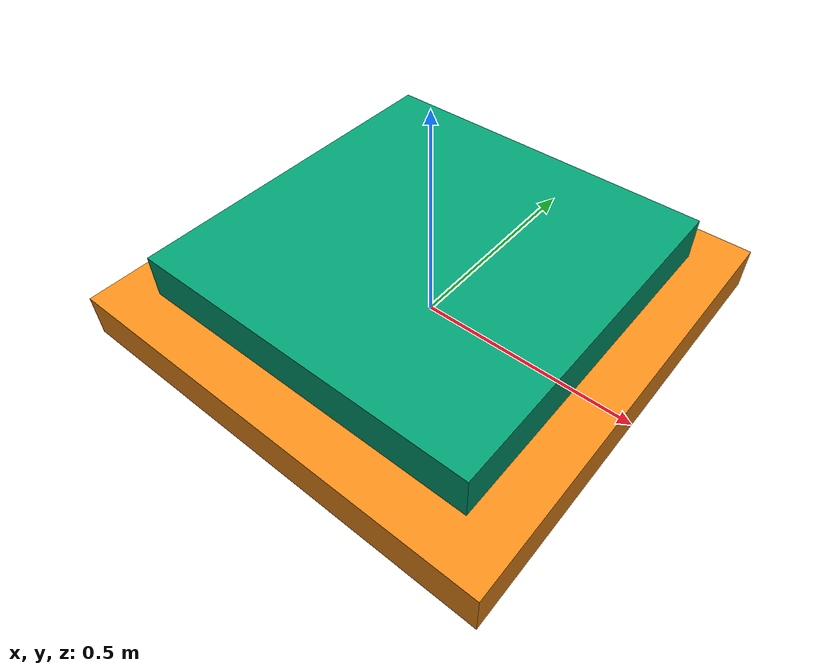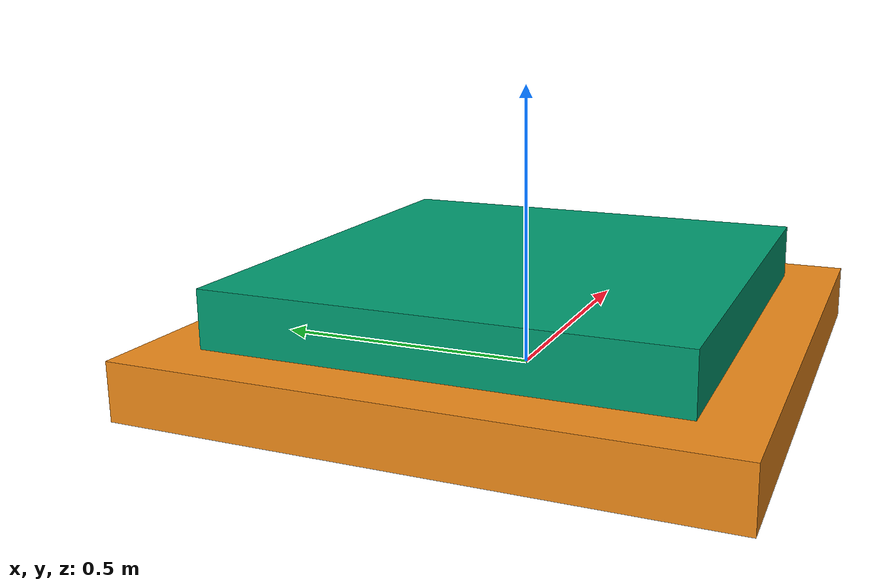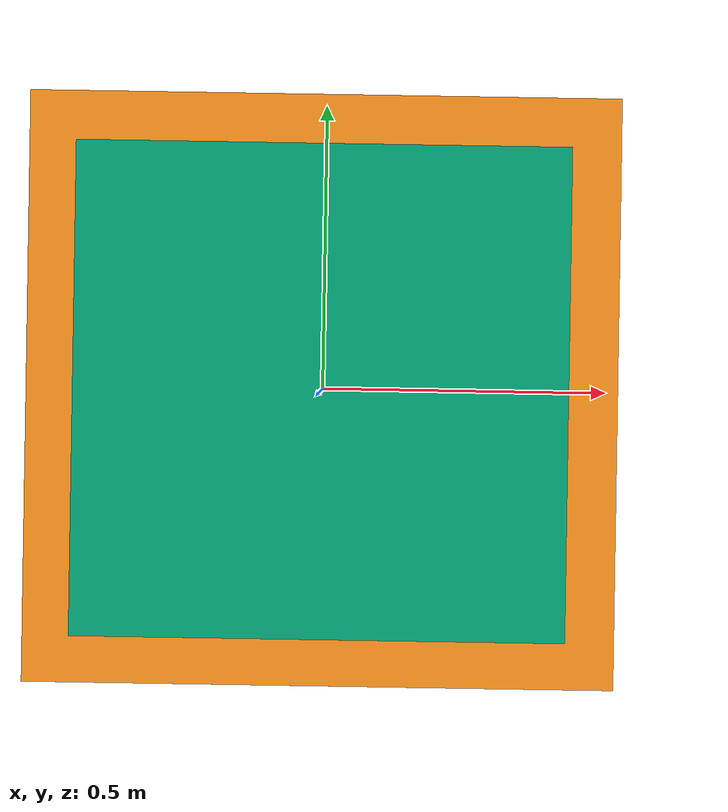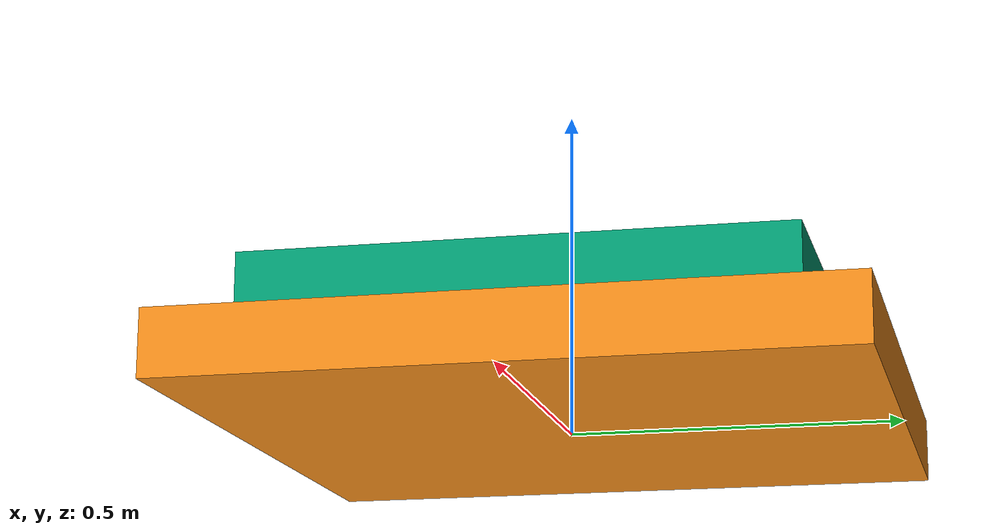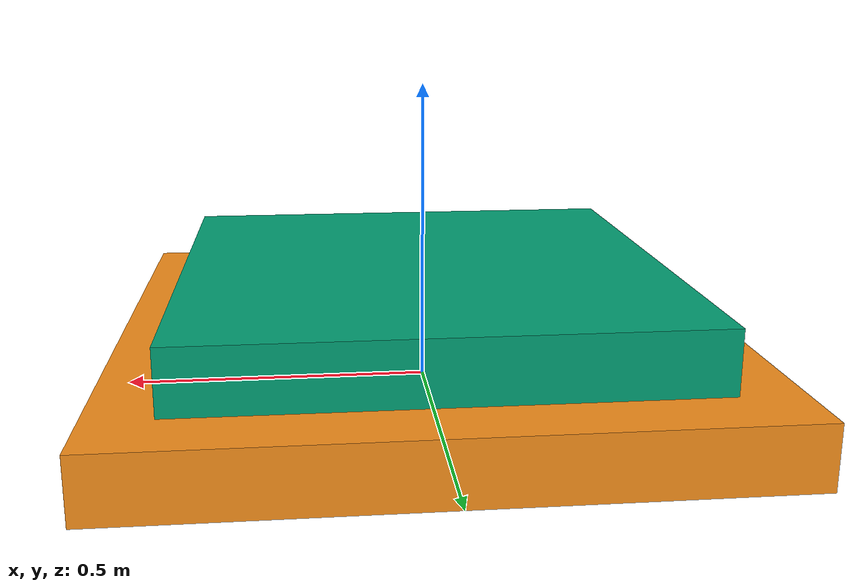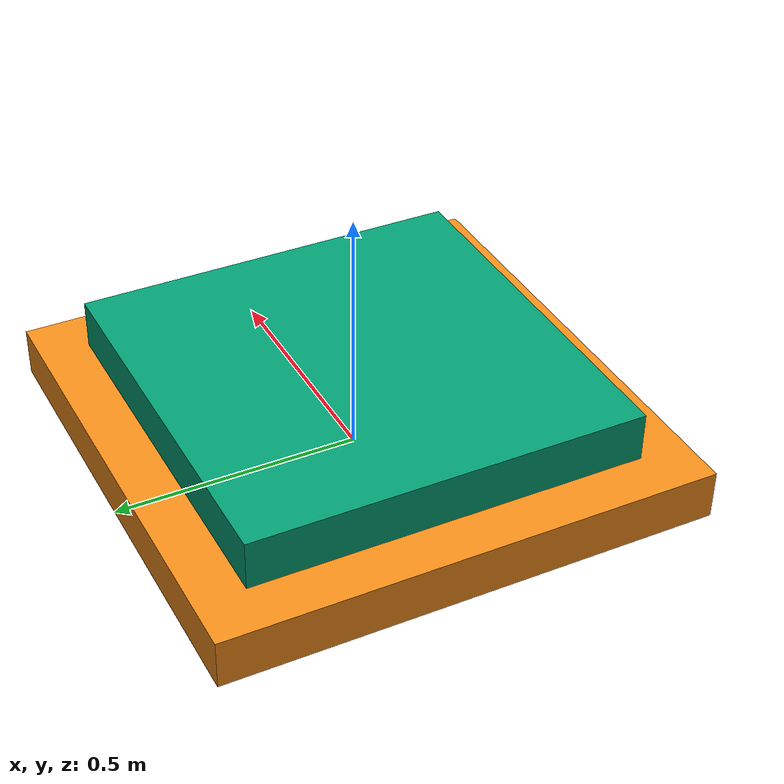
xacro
<?xml version='1.0'?>

<robot name="Pyramid" xmlns:xacro="http://www.ros.org/wiki/xacro">
  <link name="world"/>

  <joint name="fixed" type="fixed">
    <parent link="world"/>
    <child link="base"/>
  </joint>
<link name="base">
	<pose> 0 0 0 0 0 0</pose>
	<collision>
	       <origin xyz="0 0 0.05" rpy="0 0 0"/>
     	 	<geometry>
        		<box size="1 1 0.1"/>
      		</geometry>
    	</collision>

    <visual>
      <origin xyz="0 0 0.05" rpy="0 0 0"/>
      <geometry>
        <box size="1 1 0.1"/>
      </geometry>
      <material name="orange"/>
    </visual>

    <inertial>
      <origin xyz="0 0 1" rpy="0 0 0"/>
      <mass value="1"/>
      <inertia
        ixx="1.0" ixy="0.0" ixz="0.0"
        iyy="1.0" iyz="0.0"
        izz="1.0"/>
    </inertial>
  </link>

  <joint name="fixed"  type="fixed">
    <parent link="base"/>
    <child link="level1"/>
    <origin xyz="0 0 0.1" rpy="0 0 0"/>
  </joint>

<link name="level1">
	<collision>
	       <origin xyz="0 0 0.05" rpy="0 0 0"/>
     	 	<geometry>
        		<box size="0.8 0.8  0.1"/>
      		</geometry>
    	</collision>

    <visual>
      <origin xyz="0 0 0.05" rpy="0 0 0"/>
      <geometry>
        <box size="0.8 0.8  0.1"/>
      </geometry>
    </visual>

    <inertial>
      <origin xyz="0 0 1" rpy="0 0 0"/>
      <mass value="1"/>
      <inertia
        ixx="1.0" ixy="0.0" ixz="0.0"
        iyy="1.0" iyz="0.0"
        izz="1.0"/>
    </inertial>
  </link>

</robot>
